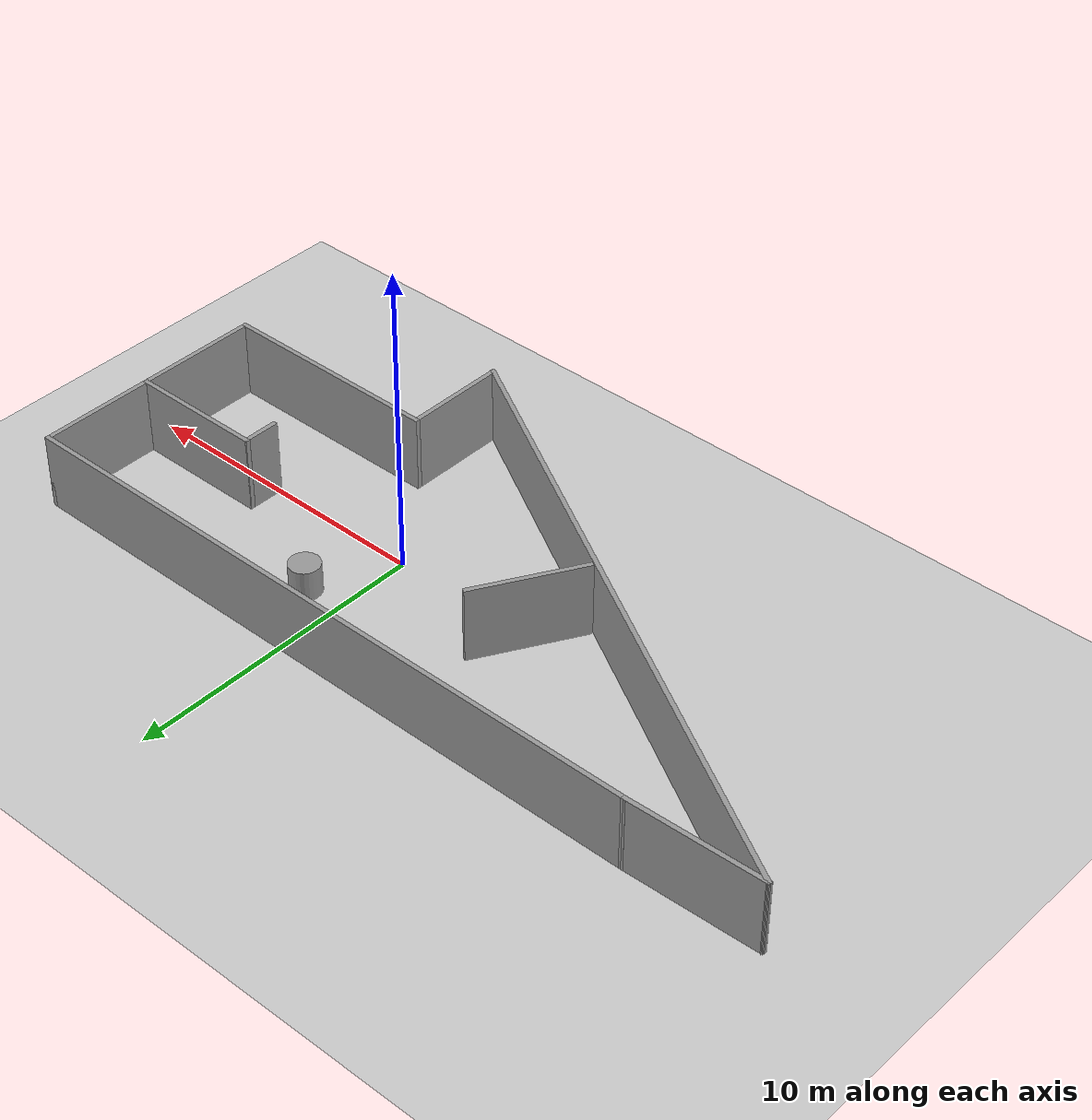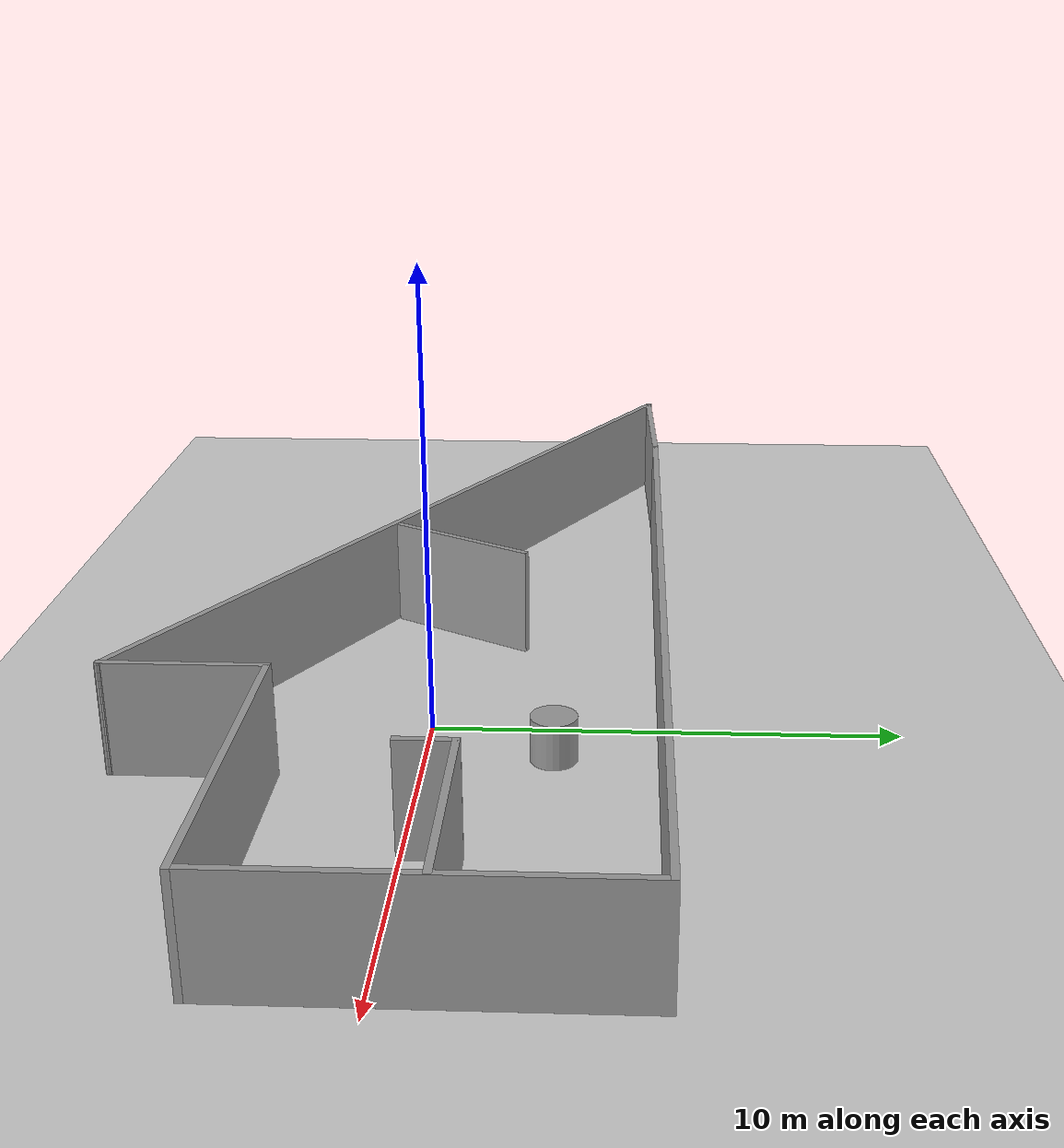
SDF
<sdf version="1.6">
 <world name="default">
  <light name="sun" type="directional">
   <pose>0 0 10 0 -0 0</pose>
   <diffuse>0.8 0.8 0.8 1</diffuse>
   <specular>0.2 0.2 0.2 1</specular>
   <attenuation>
    <range>1000</range>
    <constant>0.9</constant>
    <linear>0.01</linear>
    <quadratic>0.001</quadratic>
   </attenuation>
   <direction>-0.5 0.1 -0.9</direction>
  </light>
  <model name="ground_plane">
   <static>1</static>
   <link name="link">
    <collision name="collision">
     <geometry><plane><normal>0 0 1</normal><size>100 100</size></plane></geometry>
     <surface>
      <contact><collide_bitmask>65535</collide_bitmask></contact>
      <friction><ode><mu>100</mu><mu2>50</mu2></ode></friction>
     </surface>
    </collision>
    <visual name="visual">
     <cast_shadows>0</cast_shadows>
     <geometry><plane><normal>0 0 1</normal><size>100 100</size></plane></geometry>
     <material>
      <script><uri>file://media/materials/scripts/gazebo.material</uri><name>Gazebo/Grey</name></script>
     </material>
    </visual>
   </link>
  </model>
  <gravity>0 0 -9.8</gravity>
  <magnetic_field>6e-06 2.3e-05 -4.2e-05</magnetic_field>
  <atmosphere type="adiabatic"/>
  <physics name="default_physics" default="0" type="ode">
   <max_step_size>0.001</max_step_size>
   <real_time_factor>1</real_time_factor>
   <real_time_update_rate>1000</real_time_update_rate>
  </physics>
  <scene><ambient>0.4 0.4 0.4 1</ambient><background>0.7 0.7 0.7 1</background><shadows>1</shadows></scene>
  <audio><device>default</device></audio>
  <spherical_coordinates>
   <surface_model>EARTH_WGS84</surface_model>
   <latitude_deg>0</latitude_deg>
   <longitude_deg>0</longitude_deg>
   <elevation>0</elevation>
   <heading_deg>0</heading_deg>
  </spherical_coordinates>
  <model name="Untitled">
   <pose>-3.67332 -0.713163 0 0 -0 0</pose>
   <link name="Wall_10">
    <collision name="Wall_10_Collision">
     <geometry><box><size>4.5 0.15 2.5</size></box></geometry>
     <pose>0 0 1.25 0 -0 0</pose>
    </collision>
    <visual name="Wall_10_Visual">
     <pose>0 0 1.25 0 -0 0</pose>
     <geometry><box><size>4.5 0.15 2.5</size></box></geometry>
     <material>
      <script><uri>file://media/materials/scripts/gazebo.material</uri><name>Gazebo/Grey</name></script>
      <ambient>1 1 1 1</ambient>
     </material>
     <meta><layer>0</layer></meta>
    </visual>
    <pose>11.0634 1.81316 0 0 -0 0</pose>
   </link>
   <link name="Wall_12">
    <collision name="Wall_12_Collision">
     <geometry><box><size>1.25 0.15 2.5</size></box></geometry>
     <pose>0 0 1.25 0 -0 0</pose>
    </collision>
    <visual name="Wall_12_Visual">
     <pose>0 0 1.25 0 -0 0</pose>
     <geometry><box><size>1.25 0.15 2.5</size></box></geometry>
     <material>
      <script><uri>file://media/materials/scripts/gazebo.material</uri><name>Gazebo/Grey</name></script>
      <ambient>1 1 1 1</ambient>
     </material>
     <meta><layer>0</layer></meta>
    </visual>
    <pose>8.88841 1.26316 0 0 -0 -1.5708</pose>
   </link>
   <link name="Wall_14">
    <collision name="Wall_14_Collision">
     <geometry><box><size>3.75 0.15 2.5</size></box></geometry>
     <pose>0 0 1.25 0 -0 0</pose>
    </collision>
    <visual name="Wall_14_Visual">
     <pose>0 0 1.25 0 -0 0</pose>
     <geometry><box><size>3.75 0.15 2.5</size></box></geometry>
     <material>
      <script><uri>file://media/materials/scripts/gazebo.material</uri><name>Gazebo/Grey</name></script>
      <ambient>1 1 1 1</ambient>
     </material>
     <meta><layer>0</layer></meta>
    </visual>
    <pose>-1.36915 0.887533 0 0 -0 -2.0944</pose>
   </link>
   <link name="Wall_2">
    <collision name="Wall_2_Collision">
     <geometry><box><size>22.25 0.15 2.5</size></box></geometry>
     <pose>0 0 1.25 0 -0 0</pose>
    </collision>
    <visual name="Wall_2_Visual">
     <pose>0 0 1.25 0 -0 0</pose>
     <geometry><box><size>22.25 0.15 2.5</size></box></geometry>
     <material>
      <script><uri>file://media/materials/scripts/gazebo.material</uri><name>Gazebo/Grey</name></script>
      <ambient>1 1 1 1</ambient>
     </material>
     <meta><layer>0</layer></meta>
    </visual>
    <pose>2.20831 5.61247 0 0 -0 0</pose>
   </link>
   <link name="Wall_3">
    <collision name="Wall_3_Collision">
     <geometry><box><size>8 0.15 2.5</size></box></geometry>
     <pose>0 0 1.25 0 -0 0</pose>
    </collision>
    <visual name="Wall_3_Visual">
     <pose>0 0 1.25 0 -0 0</pose>
     <geometry><box><size>8 0.15 2.5</size></box></geometry>
     <material>
      <script><uri>file://media/materials/scripts/gazebo.material</uri><name>Gazebo/Grey</name></script>
      <ambient>1 1 1 1</ambient>
     </material>
     <meta><layer>0</layer></meta>
    </visual>
    <pose>13.2583 1.68747 0 0 -0 -1.5708</pose>
   </link>
   <link name="Wall_4">
    <collision name="Wall_4_Collision">
     <geometry><box><size>7.5 0.15 2.5</size></box></geometry>
     <pose>0 0 1.25 0 -0 0</pose>
    </collision>
    <visual name="Wall_4_Visual">
     <pose>0 0 1.25 0 -0 0</pose>
     <geometry><box><size>7.5 0.15 2.5</size></box></geometry>
     <material>
      <script><uri>file://media/materials/scripts/gazebo.material</uri><name>Gazebo/Grey</name></script>
      <ambient>1 1 1 1</ambient>
     </material>
     <meta><layer>0</layer></meta>
    </visual>
    <pose>9.58331 -2.23753 0 0 -0 3.14159</pose>
   </link>
   <link name="Wall_5">
    <collision name="Wall_5_Collision">
     <geometry><box><size>3.5 0.15 2.5</size></box></geometry>
     <pose>0 0 1.25 0 -0 0</pose>
    </collision>
    <visual name="Wall_5_Visual">
     <pose>0 0 1.25 0 -0 0</pose>
     <geometry><box><size>3.5 0.15 2.5</size></box></geometry>
     <material>
      <script><uri>file://media/materials/scripts/gazebo.material</uri><name>Gazebo/Grey</name></script>
      <ambient>1 1 1 1</ambient>
     </material>
     <meta><layer>0</layer></meta>
    </visual>
    <pose>5.90831 -3.91253 0 0 -0 -1.5708</pose>
   </link>
   <link name="Wall_6">
    <collision name="Wall_6_Collision">
     <geometry><box><size>22.25 0.15 2.5</size></box></geometry>
     <pose>0 0 1.25 0 -0 0</pose>
    </collision>
    <visual name="Wall_6_Visual">
     <pose>0 0 1.25 0 -0 0</pose>
     <geometry><box><size>22.25 0.15 2.5</size></box></geometry>
     <material>
      <script><uri>file://media/materials/scripts/gazebo.material</uri><name>Gazebo/Grey</name></script>
      <ambient>1 1 1 1</ambient>
     </material>
     <meta><layer>0</layer></meta>
    </visual>
    <pose>-3.66127 -0.062532 0 0 -0 2.61799</pose>
   </link>
   <link name="Wall_7">
    <collision name="Wall_7_Collision">
     <geometry><box><size>4.54172 0.15 2.5</size></box></geometry>
     <pose>0 0 1.25 0 -0 0</pose>
    </collision>
    <visual name="Wall_7_Visual">
     <pose>0 0 1.25 0 -0 0</pose>
     <geometry><box><size>4.54172 0.15 2.5</size></box></geometry>
     <material>
      <script><uri>file://media/materials/scripts/gazebo.material</uri><name>Gazebo/Grey</name></script>
      <ambient>1 1 1 1</ambient>
     </material>
     <meta><layer>0</layer></meta>
    </visual>
    <pose>-11.0363 5.53747 0 0 -0 0.034162</pose>
   </link>
   <static>1</static>
  </model>
  <model name="unit_cylinder">
   <pose>1.27476 2.66994 0.499997 3e-06 4e-06 -0</pose>
   <link name="link">
    <inertial>
     <mass>1</mass>
     <inertia><ixx>0.145833</ixx><ixy>0</ixy><ixz>0</ixz><iyy>0.145833</iyy><iyz>0</iyz><izz>0.125</izz></inertia>
    </inertial>
    <collision name="collision">
     <geometry><cylinder><radius>0.5</radius><length>1</length></cylinder></geometry>
    </collision>
    <visual name="visual">
     <geometry><cylinder><radius>0.5</radius><length>1</length></cylinder></geometry>
     <material>
      <script><name>Gazebo/Grey</name><uri>file://media/materials/scripts/gazebo.material</uri></script>
     </material>
    </visual>
   </link>
  </model>
 </world>
</sdf>
